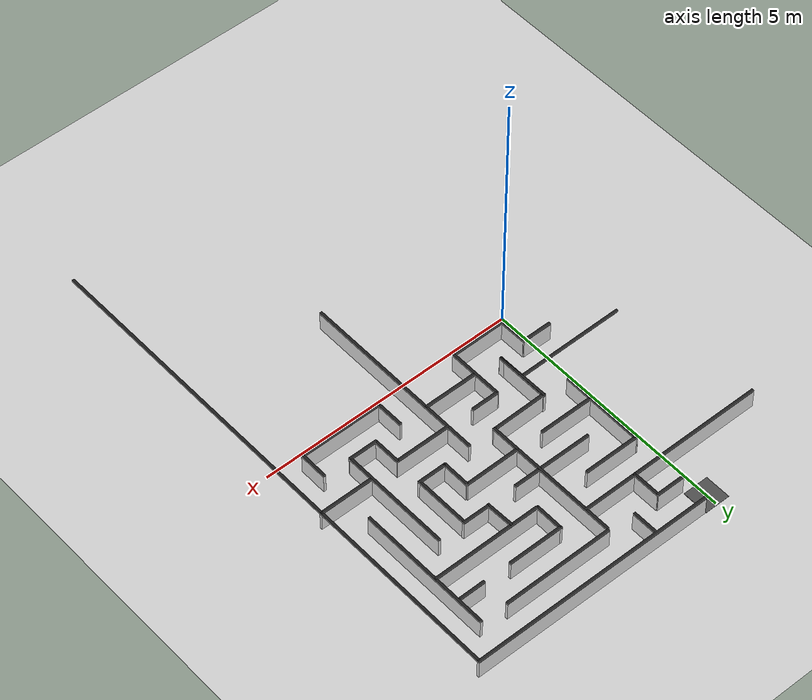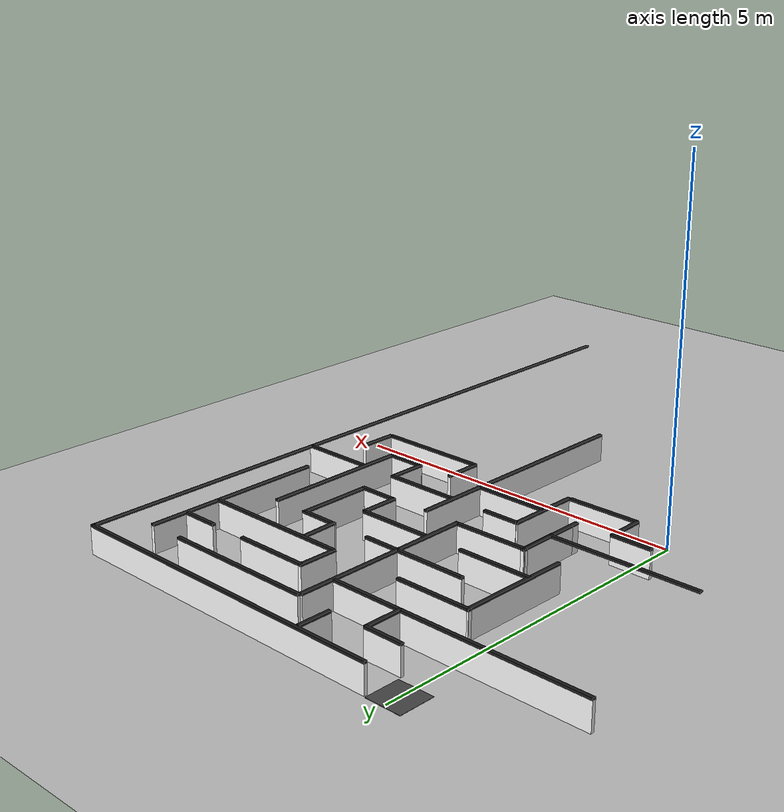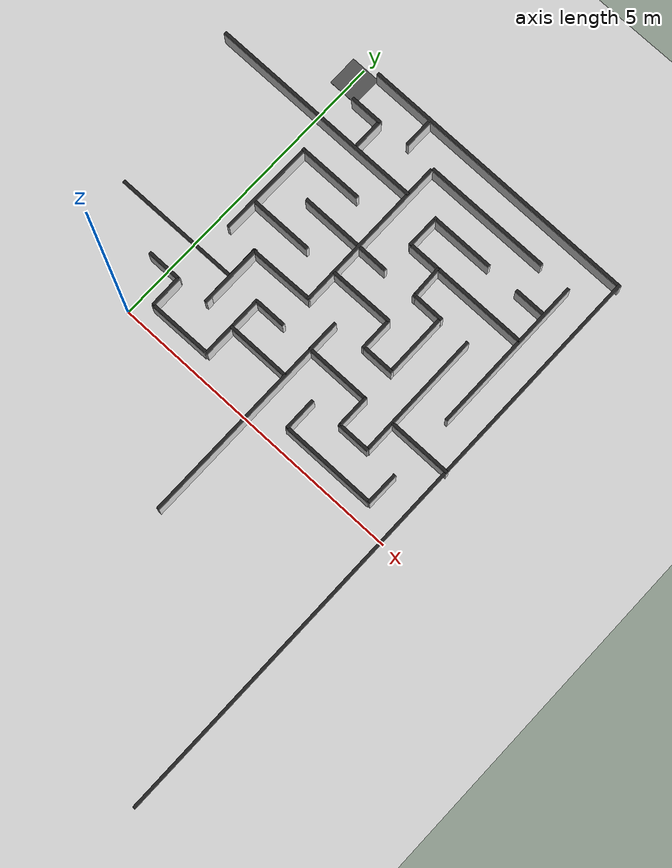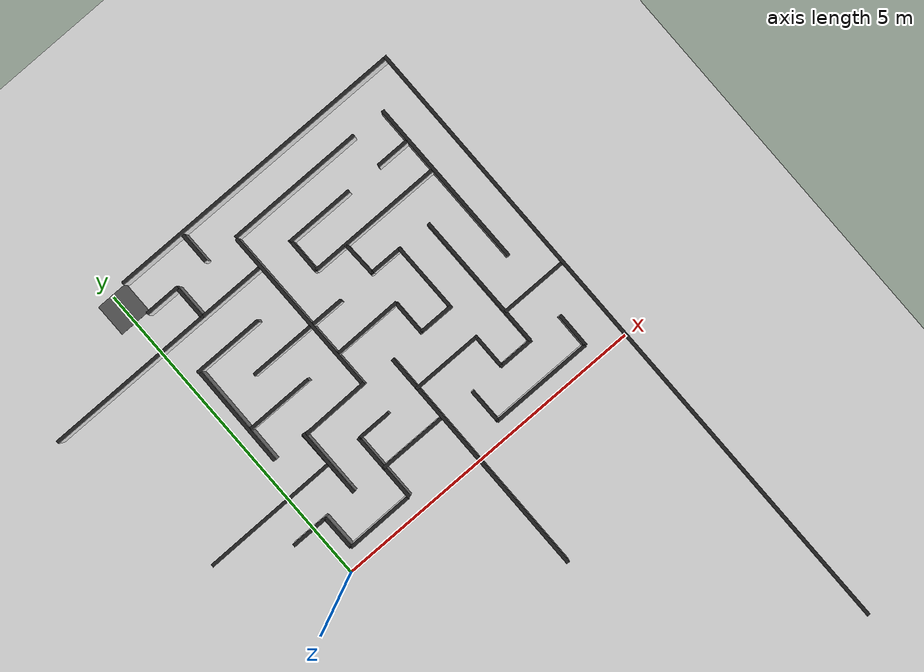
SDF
<sdf version="1.6">
 <world name="default">
  <model name="ground_plane">
   <static>1</static>
   <link name="link">
    <collision name="collision">
     <geometry><plane><normal>0 0 1</normal><size>100 100</size></plane></geometry>
     <surface><friction><ode><mu>100</mu><mu2>50</mu2></ode></friction></surface>
    </collision>
    <visual name="visual">
     <cast_shadows>0</cast_shadows>
     <geometry><plane><normal>0 0 1</normal><size>100 100</size></plane></geometry>
     <material>
      <script><uri>file://media/materials/scripts/gazebo.material</uri><name>Gazebo/Grey</name></script>
     </material>
    </visual>
   </link>
  </model>
  <model name="asphalt_green_plane">
   <static>1</static>
   <link name="link">
    <collision name="collision"><geometry><box><size>0.5 0.5 0.005</size></box></geometry></collision>
    <visual name="visual">
     <cast_shadows>0</cast_shadows>
     <geometry><box><size>0.5 0.5 0.005</size></box></geometry>
     <material>
      <script>
       <uri>model://asphalt_green_plane/materials/scripts</uri>
       <uri>model://asphalt_green_plane/materials/textures</uri>
       <name>vrc/asphalt_green</name>
      </script>
     </material>
    </visual>
   </link>
   <pose>0.003576 4.78964 0 0 -0 0</pose>
  </model>
  <model name="ibomaze">
   <link name="Wall_168">
    <collision name="Wall_168_Collision">
     <geometry><box><size>0.473 0.05 0.37</size></box></geometry>
     <pose>0 0 0.185 0 -0 0</pose>
    </collision>
    <visual name="Wall_168_Visual">
     <pose>0 0 0.185 0 -0 0</pose>
     <geometry><box><size>0.473 0.05 0.37</size></box></geometry>
     <material>
      <script><uri>file://media/materials/scripts/gazebo.material</uri><name>Gazebo/White</name></script>
      <ambient>1 1 1 1</ambient>
     </material>
    </visual>
    <pose>1.31958 4.73595 0 0 -0 1.5708</pose>
   </link>
   <link name="Wall_172">
    <collision name="Wall_172_Collision">
     <geometry><box><size>2.60602 0.05 0.37</size></box></geometry>
     <pose>0 0 0.185 0 -0 0</pose>
    </collision>
    <visual name="Wall_172_Visual">
     <pose>0 0 0.185 0 -0 0</pose>
     <geometry><box><size>2.60602 0.05 0.37</size></box></geometry>
     <material>
      <script><uri>file://media/materials/scripts/gazebo.material</uri><name>Gazebo/White</name></script>
      <ambient>1 1 1 1</ambient>
     </material>
    </visual>
    <pose>4.47494 3.17542 0 0 0 -1.56727</pose>
   </link>
   <link name="Wall_174">
    <collision name="Wall_174_Collision">
     <geometry><box><size>0.521111 0.05 0.37</size></box></geometry>
     <pose>0 0 0.185 0 -0 0</pose>
    </collision>
    <visual name="Wall_174_Visual">
     <pose>0 0 0.185 0 -0 0</pose>
     <geometry><box><size>0.521111 0.05 0.37</size></box></geometry>
     <material>
      <script><uri>file://media/materials/scripts/gazebo.material</uri><name>Gazebo/White</name></script>
      <ambient>1 1 1 1</ambient>
     </material>
    </visual>
    <pose>4.19708 3.95054 0 0 -0 0</pose>
   </link>
   <link name="Wall_176">
    <collision name="Wall_176_Collision">
     <geometry><box><size>1.053 0.05 0.37</size></box></geometry>
     <pose>0 0 0.185 0 -0 0</pose>
    </collision>
    <visual name="Wall_176_Visual">
     <pose>0 0 0.185 0 -0 0</pose>
     <geometry><box><size>1.053 0.05 0.37</size></box></geometry>
     <material>
      <script><uri>file://media/materials/scripts/gazebo.material</uri><name>Gazebo/White</name></script>
      <ambient>1 1 1 1</ambient>
     </material>
    </visual>
    <pose>2.89012 3.95254 0 0 -0 3.14159</pose>
   </link>
   <link name="Wall_178">
    <collision name="Wall_178_Collision">
     <geometry><box><size>0.563928 0.05 0.37</size></box></geometry>
     <pose>0 0 0.185 0 -0 0</pose>
    </collision>
    <visual name="Wall_178_Visual">
     <pose>0 0 0.185 0 -0 0</pose>
     <geometry><box><size>0.563928 0.05 0.37</size></box></geometry>
     <material>
      <script><uri>file://media/materials/scripts/gazebo.material</uri><name>Gazebo/White</name></script>
      <ambient>1 1 1 1</ambient>
     </material>
    </visual>
    <pose>2.37095 3.69582 0 0 -0 1.56698</pose>
   </link>
   <link name="Wall_180">
    <collision name="Wall_180_Collision">
     <geometry><box><size>2.105 0.05 0.37</size></box></geometry>
     <pose>0 0 0.185 0 -0 0</pose>
    </collision>
    <visual name="Wall_180_Visual">
     <pose>0 0 0.185 0 -0 0</pose>
     <geometry><box><size>2.105 0.05 0.37</size></box></geometry>
     <material>
      <script><uri>file://media/materials/scripts/gazebo.material</uri><name>Gazebo/White</name></script>
      <ambient>1 1 1 1</ambient>
     </material>
    </visual>
    <pose>3.42395 3.42878 0 0 -0 3.14159</pose>
   </link>
   <link name="Wall_725">
    <collision name="Wall_725_Collision">
     <geometry><box><size>1.04992 0.05 0.37</size></box></geometry>
     <pose>0 0 0.185 0 -0 0</pose>
    </collision>
    <visual name="Wall_725_Visual">
     <pose>0 0 0.185 0 -0 0</pose>
     <geometry><box><size>1.04992 0.05 0.37</size></box></geometry>
     <material>
      <script><uri>file://media/materials/scripts/gazebo.material</uri><name>Gazebo/White</name></script>
      <ambient>1 1 1 1</ambient>
     </material>
    </visual>
    <pose>4.47058 1.32554 0 0 -0 3.14159</pose>
   </link>
   <link name="Wall_727">
    <collision name="Wall_727_Collision">
     <geometry><box><size>2.10702 0.05 0.37</size></box></geometry>
     <pose>0 0 0.185 0 -0 0</pose>
    </collision>
    <visual name="Wall_727_Visual">
     <pose>0 0 0.185 0 -0 0</pose>
     <geometry><box><size>2.10702 0.05 0.37</size></box></geometry>
     <material>
      <script><uri>file://media/materials/scripts/gazebo.material</uri><name>Gazebo/White</name></script>
      <ambient>1 1 1 1</ambient>
     </material>
    </visual>
    <pose>3.94402 1.86304 0 0 0 -1.56691</pose>
   </link>
   <link name="Wall_729">
    <collision name="Wall_729_Collision">
     <geometry><box><size>0.556 0.05 0.37</size></box></geometry>
     <pose>0 0 0.185 0 -0 0</pose>
    </collision>
    <visual name="Wall_729_Visual">
     <pose>0 0 0.185 0 -0 0</pose>
     <geometry><box><size>0.556 0.05 0.37</size></box></geometry>
     <material>
      <script><uri>file://media/materials/scripts/gazebo.material</uri><name>Gazebo/White</name></script>
      <ambient>1 1 1 1</ambient>
     </material>
    </visual>
    <pose>3.68714 0.804662 0 0 -0 0</pose>
   </link>
   <link name="Wall_731">
    <collision name="Wall_731_Collision">
     <geometry><box><size>0.539 0.05 0.37</size></box></geometry>
     <pose>0 0 0.185 0 -0 0</pose>
    </collision>
    <visual name="Wall_731_Visual">
     <pose>0 0 0.185 0 -0 0</pose>
     <geometry><box><size>0.539 0.05 0.37</size></box></geometry>
     <material>
      <script><uri>file://media/materials/scripts/gazebo.material</uri><name>Gazebo/White</name></script>
      <ambient>1 1 1 1</ambient>
     </material>
    </visual>
    <pose>3.42434 1.07152 0 0 0 -1.5708</pose>
   </link>
   <link name="Wall_733">
    <collision name="Wall_733_Collision">
     <geometry><box><size>1.09912 0.05 0.37</size></box></geometry>
     <pose>0 0 0.185 0 -0 0</pose>
    </collision>
    <visual name="Wall_733_Visual">
     <pose>0 0 0.185 0 -0 0</pose>
     <geometry><box><size>1.09912 0.05 0.37</size></box></geometry>
     <material>
      <script><uri>file://media/materials/scripts/gazebo.material</uri><name>Gazebo/White</name></script>
      <ambient>1 1 1 1</ambient>
     </material>
    </visual>
    <pose>2.89608 1.32354 0 0 -0 0</pose>
   </link>
   <link name="Wall_735">
    <collision name="Wall_735_Collision">
     <geometry><box><size>3.65 0.05 0.37</size></box></geometry>
     <pose>0 0 0.185 0 -0 0</pose>
    </collision>
    <visual name="Wall_735_Visual">
     <pose>0 0 0.185 0 -0 0</pose>
     <geometry><box><size>3.65 0.05 0.37</size></box></geometry>
     <material>
      <script><uri>file://media/materials/scripts/gazebo.material</uri><name>Gazebo/White</name></script>
      <ambient>1 1 1 1</ambient>
     </material>
    </visual>
    <pose>2.36837 0.017848 0 0 0 -1.5708</pose>
   </link>
   <link name="Wall_762">
    <collision name="Wall_762_Collision">
     <geometry><box><size>1.058 0.05 0.37</size></box></geometry>
     <pose>0 0 0.185 0 -0 0</pose>
    </collision>
    <visual name="Wall_762_Visual">
     <pose>0 0 0.185 0 -0 0</pose>
     <geometry><box><size>1.058 0.05 0.37</size></box></geometry>
     <material>
      <script><uri>file://media/materials/scripts/gazebo.material</uri><name>Gazebo/White</name></script>
      <ambient>1 1 1 1</ambient>
     </material>
    </visual>
    <pose>1.84138 0.801298 0 0 -0 0</pose>
   </link>
   <link name="Wall_764">
    <collision name="Wall_764_Collision">
     <geometry><box><size>1.062 0.05 0.37</size></box></geometry>
     <pose>0 0 0.185 0 -0 0</pose>
    </collision>
    <visual name="Wall_764_Visual">
     <pose>0 0 0.185 0 -0 0</pose>
     <geometry><box><size>1.062 0.05 0.37</size></box></geometry>
     <material>
      <script><uri>file://media/materials/scripts/gazebo.material</uri><name>Gazebo/White</name></script>
      <ambient>1 1 1 1</ambient>
     </material>
    </visual>
    <pose>1.3219 0.806484 0 0 0 -1.5708</pose>
   </link>
   <link name="Wall_766">
    <collision name="Wall_766_Collision">
     <geometry><box><size>0.526 0.05 0.37</size></box></geometry>
     <pose>0 0 0.185 0 -0 0</pose>
    </collision>
    <visual name="Wall_766_Visual">
     <pose>0 0 0.185 0 -0 0</pose>
     <geometry><box><size>0.526 0.05 0.37</size></box></geometry>
     <material>
      <script><uri>file://media/materials/scripts/gazebo.material</uri><name>Gazebo/White</name></script>
      <ambient>1 1 1 1</ambient>
     </material>
    </visual>
    <pose>1.58536 1.32154 0 0 -0 3.14159</pose>
   </link>
   <link name="Wall_768">
    <collision name="Wall_768_Collision">
     <geometry><box><size>1.02603 0.05 0.37</size></box></geometry>
     <pose>0 0 0.185 0 -0 0</pose>
    </collision>
    <visual name="Wall_768_Visual">
     <pose>0 0 0.185 0 -0 0</pose>
     <geometry><box><size>1.02603 0.05 0.37</size></box></geometry>
     <material>
      <script><uri>file://media/materials/scripts/gazebo.material</uri><name>Gazebo/White</name></script>
      <ambient>1 1 1 1</ambient>
     </material>
    </visual>
    <pose>0.787014 0.280539 0 0 -0 0.008197</pose>
   </link>
   <link name="Wall_770">
    <collision name="Wall_770_Collision">
     <geometry><box><size>0.531026 0.05 0.37</size></box></geometry>
     <pose>0 0 0.185 0 -0 0</pose>
    </collision>
    <visual name="Wall_770_Visual">
     <pose>0 0 0.185 0 -0 0</pose>
     <geometry><box><size>0.531026 0.05 0.37</size></box></geometry>
     <material>
      <script><uri>file://media/materials/scripts/gazebo.material</uri><name>Gazebo/White</name></script>
      <ambient>1 1 1 1</ambient>
     </material>
    </visual>
    <pose>0.27356 0.53952 0 0 0 -1.5604</pose>
   </link>
   <link name="Wall_772">
    <collision name="Wall_772_Collision">
     <geometry><box><size>0.584072 0.05 0.37</size></box></geometry>
     <pose>0 0 0.185 0 -0 0</pose>
    </collision>
    <visual name="Wall_772_Visual">
     <pose>0 0 0.185 0 -0 0</pose>
     <geometry><box><size>0.584072 0.05 0.37</size></box></geometry>
     <material>
      <script><uri>file://media/materials/scripts/gazebo.material</uri><name>Gazebo/White</name></script>
      <ambient>1 1 1 1</ambient>
     </material>
    </visual>
    <pose>-0.005421 0.801539 0 0 -0 0</pose>
   </link>
   <link name="Wall_774">
    <collision name="Wall_774_Collision">
     <geometry><box><size>1.05608 0.05 0.37</size></box></geometry>
     <pose>0 0 0.185 0 -0 0</pose>
    </collision>
    <visual name="Wall_774_Visual">
     <pose>0 0 0.185 0 -0 0</pose>
     <geometry><box><size>1.05608 0.05 0.37</size></box></geometry>
     <material>
      <script><uri>file://media/materials/scripts/gazebo.material</uri><name>Gazebo/White</name></script>
      <ambient>1 1 1 1</ambient>
     </material>
    </visual>
    <pose>0.793579 1.34254 0 0 0 -1.5708</pose>
   </link>
   <link name="Wall_776">
    <collision name="Wall_776_Collision">
     <geometry><box><size>1.10916 0.05 0.37</size></box></geometry>
     <pose>0 0 0.185 0 -0 0</pose>
    </collision>
    <visual name="Wall_776_Visual">
     <pose>0 0 0.185 0 -0 0</pose>
     <geometry><box><size>1.10916 0.05 0.37</size></box></geometry>
     <material>
      <script><uri>file://media/materials/scripts/gazebo.material</uri><name>Gazebo/White</name></script>
      <ambient>1 1 1 1</ambient>
     </material>
    </visual>
    <pose>1.31341 1.84073 0 0 0 -3.12685</pose>
   </link>
   <link name="Wall_778">
    <collision name="Wall_778_Collision">
     <geometry><box><size>2.63464 0.05 0.37</size></box></geometry>
     <pose>0 0 0.185 0 -0 0</pose>
    </collision>
    <visual name="Wall_778_Visual">
     <pose>0 0 0.185 0 -0 0</pose>
     <geometry><box><size>2.63464 0.05 0.37</size></box></geometry>
     <material>
      <script><uri>file://media/materials/scripts/gazebo.material</uri><name>Gazebo/White</name></script>
      <ambient>1 1 1 1</ambient>
     </material>
    </visual>
    <pose>1.83843 3.14104 0 0 -0 1.57428</pose>
   </link>
   <link name="Wall_780">
    <collision name="Wall_780_Collision">
     <geometry><box><size>2.12337 0.05 0.37</size></box></geometry>
     <pose>0 0 0.185 0 -0 0</pose>
    </collision>
    <visual name="Wall_780_Visual">
     <pose>0 0 0.185 0 -0 0</pose>
     <geometry><box><size>2.12337 0.05 0.37</size></box></geometry>
     <material>
      <script><uri>file://media/materials/scripts/gazebo.material</uri><name>Gazebo/White</name></script>
      <ambient>1 1 1 1</ambient>
     </material>
    </visual>
    <pose>2.89708 4.47854 0 0 -0 3.14159</pose>
   </link>
   <link name="Wall_782">
    <collision name="Wall_782_Collision">
     <geometry><box><size>1.55401 0.05 0.37</size></box></geometry>
     <pose>0 0 0.185 0 -0 0</pose>
    </collision>
    <visual name="Wall_782_Visual">
     <pose>0 0 0.185 0 -0 0</pose>
     <geometry><box><size>1.55401 0.05 0.37</size></box></geometry>
     <material>
      <script><uri>file://media/materials/scripts/gazebo.material</uri><name>Gazebo/White</name></script>
      <ambient>1 1 1 1</ambient>
     </material>
    </visual>
    <pose>1.58686 2.9038 0 0 0 -0.003324</pose>
   </link>
   <link name="Wall_784">
    <collision name="Wall_784_Collision">
     <geometry><box><size>1.08632 0.05 0.37</size></box></geometry>
     <pose>0 0 0.185 0 -0 0</pose>
    </collision>
    <visual name="Wall_784_Visual">
     <pose>0 0 0.185 0 -0 0</pose>
     <geometry><box><size>1.08632 0.05 0.37</size></box></geometry>
     <material>
      <script><uri>file://media/materials/scripts/gazebo.material</uri><name>Gazebo/White</name></script>
      <ambient>1 1 1 1</ambient>
     </material>
    </visual>
    <pose>0.790122 3.42855 0 0 -0 3.14099</pose>
   </link>
   <link name="Wall_786">
    <collision name="Wall_786_Collision">
     <geometry><box><size>1.61005 0.05 0.37</size></box></geometry>
     <pose>0 0 0.185 0 -0 0</pose>
    </collision>
    <visual name="Wall_786_Visual">
     <pose>0 0 0.185 0 -0 0</pose>
     <geometry><box><size>1.61005 0.05 0.37</size></box></geometry>
     <material>
      <script><uri>file://media/materials/scripts/gazebo.material</uri><name>Gazebo/White</name></script>
      <ambient>1 1 1 1</ambient>
     </material>
    </visual>
    <pose>0.270286 2.64886 0 0 0 -1.57849</pose>
   </link>
   <link name="Wall_820">
    <collision name="Wall_820_Collision">
     <geometry><box><size>1.04303 0.05 0.37</size></box></geometry>
     <pose>0 0 0.185 0 -0 0</pose>
    </collision>
    <visual name="Wall_820_Visual">
     <pose>0 0 0.185 0 -0 0</pose>
     <geometry><box><size>1.04303 0.05 0.37</size></box></geometry>
     <material>
      <script><uri>file://media/materials/scripts/gazebo.material</uri><name>Gazebo/White</name></script>
      <ambient>1 1 1 1</ambient>
     </material>
    </visual>
    <pose>0.790658 1.33969 0 0 0 -1.56375</pose>
   </link>
   <link name="Wall_822">
    <collision name="Wall_822_Collision">
     <geometry><box><size>1.05465 0.05 0.37</size></box></geometry>
     <pose>0 0 0.185 0 -0 0</pose>
    </collision>
    <visual name="Wall_822_Visual">
     <pose>0 0 0.185 0 -0 0</pose>
     <geometry><box><size>1.05465 0.05 0.37</size></box></geometry>
     <material>
      <script><uri>file://media/materials/scripts/gazebo.material</uri><name>Gazebo/White</name></script>
      <ambient>1 1 1 1</ambient>
     </material>
    </visual>
    <pose>0.797079 2.37954 0 0 -0 3.14159</pose>
   </link>
   <link name="Wall_834">
    <collision name="Wall_834_Collision">
     <geometry><box><size>3.659 0.05 0.37</size></box></geometry>
     <pose>0 0 0.185 0 -0 0</pose>
    </collision>
    <visual name="Wall_834_Visual">
     <pose>0 0 0.185 0 -0 0</pose>
     <geometry><box><size>3.659 0.05 0.37</size></box></geometry>
     <material>
      <script><uri>file://media/materials/scripts/gazebo.material</uri><name>Gazebo/White</name></script>
      <ambient>1 1 1 1</ambient>
     </material>
    </visual>
    <pose>0.024914 3.95678 0 0 -0 0</pose>
   </link>
   <link name="Wall_836">
    <collision name="Wall_836_Collision">
     <geometry><box><size>0.55 0.05 0.37</size></box></geometry>
     <pose>0 0 0.185 0 -0 0</pose>
    </collision>
    <visual name="Wall_836_Visual">
     <pose>0 0 0.185 0 -0 0</pose>
     <geometry><box><size>0.55 0.05 0.37</size></box></geometry>
     <material>
      <script><uri>file://media/materials/scripts/gazebo.material</uri><name>Gazebo/White</name></script>
      <ambient>1 1 1 1</ambient>
     </material>
    </visual>
    <pose>0.529774 4.48178 0 0 -0 0</pose>
   </link>
   <link name="Wall_840">
    <collision name="Wall_840_Collision">
     <geometry><box><size>0.545395 0.05 0.37</size></box></geometry>
     <pose>0 0 0.185 0 -0 0</pose>
    </collision>
    <visual name="Wall_840_Visual">
     <pose>0 0 0.185 0 -0 0</pose>
     <geometry><box><size>0.545395 0.05 0.37</size></box></geometry>
     <material>
      <script><uri>file://media/materials/scripts/gazebo.material</uri><name>Gazebo/White</name></script>
      <ambient>1 1 1 1</ambient>
     </material>
    </visual>
    <pose>0.790949 4.21861 0 0 -0 1.57461</pose>
   </link>
   <link name="Wall_842">
    <collision name="Wall_842_Collision">
     <geometry><box><size>0.473 0.05 0.37</size></box></geometry>
     <pose>0 0 0.185 0 -0 0</pose>
    </collision>
    <visual name="Wall_842_Visual">
     <pose>0 0 0.185 0 -0 0</pose>
     <geometry><box><size>0.473 0.05 0.37</size></box></geometry>
     <material>
      <script><uri>file://media/materials/scripts/gazebo.material</uri><name>Gazebo/White</name></script>
      <ambient>1 1 1 1</ambient>
     </material>
    </visual>
    <pose>1.31958 4.73595 0 0 -0 1.5708</pose>
   </link>
   <link name="Wall_845">
    <collision name="Wall_845_Collision">
     <geometry><box><size>0.553682 0.05 0.37</size></box></geometry>
     <pose>0 0 0.185 0 -0 0</pose>
    </collision>
    <visual name="Wall_845_Visual">
     <pose>0 0 0.185 0 -0 0</pose>
     <geometry><box><size>0.553682 0.05 0.37</size></box></geometry>
     <material>
      <script><uri>file://media/materials/scripts/gazebo.material</uri><name>Gazebo/White</name></script>
      <ambient>1 1 1 1</ambient>
     </material>
    </visual>
    <pose>2.91321 3.15977 0 0 0 -1.5365</pose>
   </link>
   <link name="Wall_847">
    <collision name="Wall_847_Collision">
     <geometry><box><size>0.553474 0.05 0.37</size></box></geometry>
     <pose>0 0 0.185 0 -0 0</pose>
    </collision>
    <visual name="Wall_847_Visual">
     <pose>0 0 0.185 0 -0 0</pose>
     <geometry><box><size>0.553474 0.05 0.37</size></box></geometry>
     <material>
      <script><uri>file://media/materials/scripts/gazebo.material</uri><name>Gazebo/White</name></script>
      <ambient>1 1 1 1</ambient>
     </material>
    </visual>
    <pose>3.17358 2.90958 0 0 -0 3.13456</pose>
   </link>
   <link name="Wall_849">
    <collision name="Wall_849_Collision">
     <geometry><box><size>1.03501 0.05 0.37</size></box></geometry>
     <pose>0 0 0.185 0 -0 0</pose>
    </collision>
    <visual name="Wall_849_Visual">
     <pose>0 0 0.185 0 -0 0</pose>
     <geometry><box><size>1.03501 0.05 0.37</size></box></geometry>
     <material>
      <script><uri>file://media/materials/scripts/gazebo.material</uri><name>Gazebo/White</name></script>
      <ambient>1 1 1 1</ambient>
     </material>
    </visual>
    <pose>3.42439 2.40673 0 0 -0 1.57486</pose>
   </link>
   <link name="Wall_851">
    <collision name="Wall_851_Collision">
     <geometry><box><size>0.542 0.05 0.37</size></box></geometry>
     <pose>0 0 0.185 0 -0 0</pose>
    </collision>
    <visual name="Wall_851_Visual">
     <pose>0 0 0.185 0 -0 0</pose>
     <geometry><box><size>0.542 0.05 0.37</size></box></geometry>
     <material>
      <script><uri>file://media/materials/scripts/gazebo.material</uri><name>Gazebo/White</name></script>
      <ambient>1 1 1 1</ambient>
     </material>
    </visual>
    <pose>3.17993 1.86406 0 0 -0 0</pose>
   </link>
   <link name="Wall_853">
    <collision name="Wall_853_Collision">
     <geometry><box><size>0.547 0.05 0.37</size></box></geometry>
     <pose>0 0 0.185 0 -0 0</pose>
    </collision>
    <visual name="Wall_853_Visual">
     <pose>0 0 0.185 0 -0 0</pose>
     <geometry><box><size>0.547 0.05 0.37</size></box></geometry>
     <material>
      <script><uri>file://media/materials/scripts/gazebo.material</uri><name>Gazebo/White</name></script>
      <ambient>1 1 1 1</ambient>
     </material>
    </visual>
    <pose>2.90285 2.11396 0 0 0 -1.5708</pose>
   </link>
   <link name="Wall_855">
    <collision name="Wall_855_Collision">
     <geometry><box><size>1.08302 0.05 0.37</size></box></geometry>
     <pose>0 0 0.185 0 -0 0</pose>
    </collision>
    <visual name="Wall_855_Visual">
     <pose>0 0 0.185 0 -0 0</pose>
     <geometry><box><size>1.08302 0.05 0.37</size></box></geometry>
     <material>
      <script><uri>file://media/materials/scripts/gazebo.material</uri><name>Gazebo/White</name></script>
      <ambient>1 1 1 1</ambient>
     </material>
    </visual>
    <pose>2.36938 2.38254 0 0 -0 0.005808</pose>
   </link>
   <link name="Wall_880">
    <collision name="Wall_880_Collision">
     <geometry><box><size>1.578 0.05 0.37</size></box></geometry>
     <pose>0 0 0.185 0 -0 0</pose>
    </collision>
    <visual name="Wall_880_Visual">
     <pose>0 0 0.185 0 -0 0</pose>
     <geometry><box><size>1.578 0.05 0.37</size></box></geometry>
     <material>
      <script><uri>file://media/materials/scripts/gazebo.material</uri><name>Gazebo/White</name></script>
      <ambient>1 1 1 1</ambient>
     </material>
    </visual>
    <pose>3.68078 0.274091 0 0 -0 0.001309</pose>
   </link>
   <link name="Wall_882">
    <collision name="Wall_882_Collision">
     <geometry><box><size>0.539009 0.05 0.37</size></box></geometry>
     <pose>0 0 0.185 0 -0 0</pose>
    </collision>
    <visual name="Wall_882_Visual">
     <pose>0 0 0.185 0 -0 0</pose>
     <geometry><box><size>0.539009 0.05 0.37</size></box></geometry>
     <material>
      <script><uri>file://media/materials/scripts/gazebo.material</uri><name>Gazebo/White</name></script>
      <ambient>1 1 1 1</ambient>
     </material>
    </visual>
    <pose>4.47608 0.533736 0 0 0 -1.57693</pose>
   </link>
   <link name="Wall_884">
    <collision name="Wall_884_Collision">
     <geometry><box><size>0.539004 0.05 0.37</size></box></geometry>
     <pose>0 0 0.185 0 -0 0</pose>
    </collision>
    <visual name="Wall_884_Visual">
     <pose>0 0 0.185 0 -0 0</pose>
     <geometry><box><size>0.539004 0.05 0.37</size></box></geometry>
     <material>
      <script><uri>file://media/materials/scripts/gazebo.material</uri><name>Gazebo/White</name></script>
      <ambient>1 1 1 1</ambient>
     </material>
    </visual>
    <pose>2.904 0.53432 0 0 0 -1.56671</pose>
   </link>
   <link name="Wall_9">
    <collision name="Wall_9_Collision">
     <geometry><box><size>4.72702 0.05 0.37</size></box></geometry>
     <pose>0 0 0.185 0 -0 0</pose>
    </collision>
    <visual name="Wall_9_Visual">
     <pose>0 0 0.185 0 -0 0</pose>
     <geometry><box><size>4.72702 0.05 0.37</size></box></geometry>
     <material>
      <script><uri>file://media/materials/scripts/gazebo.material</uri><name>Gazebo/White</name></script>
      <ambient>1 1 1 1</ambient>
     </material>
    </visual>
    <pose>2.63436 5.00063 0 0 -0 3.13838</pose>
   </link>
   <static>1</static>
  </model>
  <model name="ibomaze_5">
   <pose>0 0 0.37 0 -0 0</pose>
   <link name="Wall_168">
    <collision name="Wall_168_Collision">
     <geometry><box><size>0.473 0.05 0.03</size></box></geometry>
     <pose>0 0 0.015 0 -0 0</pose>
    </collision>
    <visual name="Wall_168_Visual">
     <pose>0 0 0.015 0 -0 0</pose>
     <geometry><box><size>0.473 0.05 0.03</size></box></geometry>
     <material>
      <script><uri>file://media/materials/scripts/gazebo.material</uri><name>Gazebo/Black</name></script>
      <ambient>0 0 0 1</ambient>
     </material>
    </visual>
    <pose>1.31958 4.73595 0 0 -0 1.5708</pose>
   </link>
   <link name="Wall_172">
    <collision name="Wall_172_Collision">
     <geometry><box><size>2.60602 0.05 0.03</size></box></geometry>
     <pose>0 0 0.015 0 -0 0</pose>
    </collision>
    <visual name="Wall_172_Visual">
     <pose>0 0 0.015 0 -0 0</pose>
     <geometry><box><size>2.60602 0.05 0.03</size></box></geometry>
     <material>
      <script><uri>file://media/materials/scripts/gazebo.material</uri><name>Gazebo/Black</name></script>
      <ambient>0 0 0 1</ambient>
     </material>
    </visual>
    <pose>4.47494 3.17542 0 0 0 -1.56727</pose>
   </link>
   <link name="Wall_174">
    <collision name="Wall_174_Collision">
     <geometry><box><size>0.521111 0.05 0.03</size></box></geometry>
     <pose>0 0 0.015 0 -0 0</pose>
    </collision>
    <visual name="Wall_174_Visual">
     <pose>0 0 0.015 0 -0 0</pose>
     <geometry><box><size>0.521111 0.05 0.03</size></box></geometry>
     <material>
      <script><uri>file://media/materials/scripts/gazebo.material</uri><name>Gazebo/Black</name></script>
      <ambient>0 0 0 1</ambient>
     </material>
    </visual>
    <pose>4.19708 3.95054 0 0 -0 0</pose>
   </link>
   <link name="Wall_176">
    <collision name="Wall_176_Collision">
     <geometry><box><size>1.053 0.05 0.03</size></box></geometry>
     <pose>0 0 0.015 0 -0 0</pose>
    </collision>
    <visual name="Wall_176_Visual">
     <pose>0 0 0.015 0 -0 0</pose>
     <geometry><box><size>1.053 0.05 0.03</size></box></geometry>
     <material>
      <script><uri>file://media/materials/scripts/gazebo.material</uri><name>Gazebo/Black</name></script>
      <ambient>0 0 0 1</ambient>
     </material>
    </visual>
    <pose>2.89012 3.95254 0 0 -0 3.14159</pose>
   </link>
   <link name="Wall_178">
    <collision name="Wall_178_Collision">
     <geometry><box><size>0.563928 0.05 0.03</size></box></geometry>
     <pose>0 0 0.015 0 -0 0</pose>
    </collision>
    <visual name="Wall_178_Visual">
     <pose>0 0 0.015 0 -0 0</pose>
     <geometry><box><size>0.563928 0.05 0.03</size></box></geometry>
     <material>
      <script><uri>file://media/materials/scripts/gazebo.material</uri><name>Gazebo/Black</name></script>
      <ambient>0 0 0 1</ambient>
     </material>
    </visual>
    <pose>2.37095 3.69582 0 0 -0 1.56698</pose>
   </link>
   <link name="Wall_180">
    <collision name="Wall_180_Collision">
     <geometry><box><size>2.105 0.05 0.03</size></box></geometry>
     <pose>0 0 0.015 0 -0 0</pose>
    </collision>
    <visual name="Wall_180_Visual">
     <pose>0 0 0.015 0 -0 0</pose>
     <geometry><box><size>2.105 0.05 0.03</size></box></geometry>
     <material>
      <script><uri>file://media/materials/scripts/gazebo.material</uri><name>Gazebo/Black</name></script>
      <ambient>0 0 0 1</ambient>
     </material>
    </visual>
    <pose>3.42395 3.42878 0 0 -0 3.14159</pose>
   </link>
   <link name="Wall_7">
    <collision name="Wall_7_Collision">
     <geometry><box><size>10.0256 0.05 0.03</size></box></geometry>
     <pose>0 0 0.015 0 -0 0</pose>
    </collision>
    <visual name="Wall_7_Visual">
     <pose>0 0 0.015 0 -0 0</pose>
     <geometry><box><size>10.0256 0.05 0.03</size></box></geometry>
     <material>
      <script><uri>file://media/materials/scripts/gazebo.material</uri><name>Gazebo/Black</name></script>
      <ambient>0 0 0 1</ambient>
     </material>
    </visual>
    <pose>4.98072 0.005333 0 0 -0 1.57237</pose>
   </link>
   <link name="Wall_725">
    <collision name="Wall_725_Collision">
     <geometry><box><size>1.04992 0.05 0.03</size></box></geometry>
     <pose>0 0 0.015 0 -0 0</pose>
    </collision>
    <visual name="Wall_725_Visual">
     <pose>0 0 0.015 0 -0 0</pose>
     <geometry><box><size>1.04992 0.05 0.03</size></box></geometry>
     <material>
      <script><uri>file://media/materials/scripts/gazebo.material</uri><name>Gazebo/Black</name></script>
      <ambient>0 0 0 1</ambient>
     </material>
    </visual>
    <pose>4.47058 1.32554 0 0 -0 3.14159</pose>
   </link>
   <link name="Wall_727">
    <collision name="Wall_727_Collision">
     <geometry><box><size>2.10702 0.05 0.03</size></box></geometry>
     <pose>0 0 0.015 0 -0 0</pose>
    </collision>
    <visual name="Wall_727_Visual">
     <pose>0 0 0.015 0 -0 0</pose>
     <geometry><box><size>2.10702 0.05 0.03</size></box></geometry>
     <material>
      <script><uri>file://media/materials/scripts/gazebo.material</uri><name>Gazebo/Black</name></script>
      <ambient>0 0 0 1</ambient>
     </material>
    </visual>
    <pose>3.94402 1.86304 0 0 0 -1.56691</pose>
   </link>
   <link name="Wall_729">
    <collision name="Wall_729_Collision">
     <geometry><box><size>0.556 0.05 0.03</size></box></geometry>
     <pose>0 0 0.015 0 -0 0</pose>
    </collision>
    <visual name="Wall_729_Visual">
     <pose>0 0 0.015 0 -0 0</pose>
     <geometry><box><size>0.556 0.05 0.03</size></box></geometry>
     <material>
      <script><uri>file://media/materials/scripts/gazebo.material</uri><name>Gazebo/Black</name></script>
      <ambient>0 0 0 1</ambient>
     </material>
    </visual>
    <pose>3.68714 0.804662 0 0 -0 0</pose>
   </link>
   <link name="Wall_731">
    <collision name="Wall_731_Collision">
     <geometry><box><size>0.539 0.05 0.03</size></box></geometry>
     <pose>0 0 0.015 0 -0 0</pose>
    </collision>
    <visual name="Wall_731_Visual">
     <pose>0 0 0.015 0 -0 0</pose>
     <geometry><box><size>0.539 0.05 0.03</size></box></geometry>
     <material>
      <script><uri>file://media/materials/scripts/gazebo.material</uri><name>Gazebo/Black</name></script>
      <ambient>0 0 0 1</ambient>
     </material>
    </visual>
    <pose>3.42434 1.07152 0 0 0 -1.5708</pose>
   </link>
   <link name="Wall_733">
    <collision name="Wall_733_Collision">
     <geometry><box><size>1.09912 0.05 0.03</size></box></geometry>
     <pose>0 0 0.015 0 -0 0</pose>
    </collision>
    <visual name="Wall_733_Visual">
     <pose>0 0 0.015 0 -0 0</pose>
     <geometry><box><size>1.09912 0.05 0.03</size></box></geometry>
     <material>
      <script><uri>file://media/materials/scripts/gazebo.material</uri><name>Gazebo/Black</name></script>
      <ambient>0 0 0 1</ambient>
     </material>
    </visual>
    <pose>2.89608 1.32354 0 0 -0 0</pose>
   </link>
   <link name="Wall_735">
    <collision name="Wall_735_Collision">
     <geometry><box><size>3.65 0.05 0.03</size></box></geometry>
     <pose>0 0 0.015 0 -0 0</pose>
    </collision>
    <visual name="Wall_735_Visual">
     <pose>0 0 0.015 0 -0 0</pose>
     <geometry><box><size>3.65 0.05 0.03</size></box></geometry>
     <material>
      <script><uri>file://media/materials/scripts/gazebo.material</uri><name>Gazebo/Black</name></script>
      <ambient>0 0 0 1</ambient>
     </material>
    </visual>
    <pose>2.36837 0.017848 0 0 0 -1.5708</pose>
   </link>
   <link name="Wall_762">
    <collision name="Wall_762_Collision">
     <geometry><box><size>1.058 0.05 0.03</size></box></geometry>
     <pose>0 0 0.015 0 -0 0</pose>
    </collision>
    <visual name="Wall_762_Visual">
     <pose>0 0 0.015 0 -0 0</pose>
     <geometry><box><size>1.058 0.05 0.03</size></box></geometry>
     <material>
      <script><uri>file://media/materials/scripts/gazebo.material</uri><name>Gazebo/Black</name></script>
      <ambient>0 0 0 1</ambient>
     </material>
    </visual>
    <pose>1.84138 0.801298 0 0 -0 0</pose>
   </link>
   <link name="Wall_764">
    <collision name="Wall_764_Collision">
     <geometry><box><size>1.062 0.05 0.03</size></box></geometry>
     <pose>0 0 0.015 0 -0 0</pose>
    </collision>
    <visual name="Wall_764_Visual">
     <pose>0 0 0.015 0 -0 0</pose>
     <geometry><box><size>1.062 0.05 0.03</size></box></geometry>
     <material>
      <script><uri>file://media/materials/scripts/gazebo.material</uri><name>Gazebo/Black</name></script>
      <ambient>0 0 0 1</ambient>
     </material>
    </visual>
    <pose>1.3219 0.806484 0 0 0 -1.5708</pose>
   </link>
   <link name="Wall_766">
    <collision name="Wall_766_Collision">
     <geometry><box><size>0.526 0.05 0.03</size></box></geometry>
     <pose>0 0 0.015 0 -0 0</pose>
    </collision>
    <visual name="Wall_766_Visual">
     <pose>0 0 0.015 0 -0 0</pose>
     <geometry><box><size>0.526 0.05 0.03</size></box></geometry>
     <material>
      <script><uri>file://media/materials/scripts/gazebo.material</uri><name>Gazebo/Black</name></script>
      <ambient>0 0 0 1</ambient>
     </material>
    </visual>
    <pose>1.58536 1.32154 0 0 -0 3.14159</pose>
   </link>
   <link name="Wall_768">
    <collision name="Wall_768_Collision">
     <geometry><box><size>1.02603 0.05 0.03</size></box></geometry>
     <pose>0 0 0.015 0 -0 0</pose>
    </collision>
    <visual name="Wall_768_Visual">
     <pose>0 0 0.015 0 -0 0</pose>
     <geometry><box><size>1.02603 0.05 0.03</size></box></geometry>
     <material>
      <script><uri>file://media/materials/scripts/gazebo.material</uri><name>Gazebo/Black</name></script>
      <ambient>0 0 0 1</ambient>
     </material>
    </visual>
    <pose>0.787014 0.280539 0 0 -0 0.008197</pose>
   </link>
   <link name="Wall_770">
    <collision name="Wall_770_Collision">
     <geometry><box><size>0.531026 0.05 0.03</size></box></geometry>
     <pose>0 0 0.015 0 -0 0</pose>
    </collision>
    <visual name="Wall_770_Visual">
     <pose>0 0 0.015 0 -0 0</pose>
     <geometry><box><size>0.531026 0.05 0.03</size></box></geometry>
     <material>
      <script><uri>file://media/materials/scripts/gazebo.material</uri><name>Gazebo/Black</name></script>
      <ambient>0 0 0 1</ambient>
     </material>
    </visual>
    <pose>0.27356 0.53952 0 0 0 -1.5604</pose>
   </link>
   <link name="Wall_772">
    <collision name="Wall_772_Collision">
     <geometry><box><size>0.584072 0.05 0.03</size></box></geometry>
     <pose>0 0 0.015 0 -0 0</pose>
    </collision>
    <visual name="Wall_772_Visual">
     <pose>0 0 0.015 0 -0 0</pose>
     <geometry><box><size>0.584072 0.05 0.03</size></box></geometry>
     <material>
      <script><uri>file://media/materials/scripts/gazebo.material</uri><name>Gazebo/Black</name></script>
      <ambient>0 0 0 1</ambient>
     </material>
    </visual>
    <pose>-0.005421 0.801539 0 0 -0 0</pose>
   </link>
   <link name="Wall_774">
    <collision name="Wall_774_Collision">
     <geometry><box><size>1.05608 0.05 0.03</size></box></geometry>
     <pose>0 0 0.015 0 -0 0</pose>
    </collision>
    <visual name="Wall_774_Visual">
     <pose>0 0 0.015 0 -0 0</pose>
     <geometry><box><size>1.05608 0.05 0.03</size></box></geometry>
     <material>
      <script><uri>file://media/materials/scripts/gazebo.material</uri><name>Gazebo/Black</name></script>
      <ambient>0 0 0 1</ambient>
     </material>
    </visual>
    <pose>0.793579 1.34254 0 0 0 -1.5708</pose>
   </link>
   <link name="Wall_776">
    <collision name="Wall_776_Collision">
     <geometry><box><size>1.10916 0.05 0.03</size></box></geometry>
     <pose>0 0 0.015 0 -0 0</pose>
    </collision>
    <visual name="Wall_776_Visual">
     <pose>0 0 0.015 0 -0 0</pose>
     <geometry><box><size>1.10916 0.05 0.03</size></box></geometry>
     <material>
      <script><uri>file://media/materials/scripts/gazebo.material</uri><name>Gazebo/Black</name></script>
      <ambient>0 0 0 1</ambient>
     </material>
    </visual>
    <pose>1.31341 1.84073 0 0 0 -3.12685</pose>
   </link>
   <link name="Wall_778">
    <collision name="Wall_778_Collision">
     <geometry><box><size>2.63464 0.05 0.03</size></box></geometry>
     <pose>0 0 0.015 0 -0 0</pose>
    </collision>
    <visual name="Wall_778_Visual">
     <pose>0 0 0.015 0 -0 0</pose>
     <geometry><box><size>2.63464 0.05 0.03</size></box></geometry>
     <material>
      <script><uri>file://media/materials/scripts/gazebo.material</uri><name>Gazebo/Black</name></script>
      <ambient>0 0 0 1</ambient>
     </material>
    </visual>
    <pose>1.83843 3.14104 0 0 -0 1.57428</pose>
   </link>
   <link name="Wall_780">
    <collision name="Wall_780_Collision">
     <geometry><box><size>2.12337 0.05 0.03</size></box></geometry>
     <pose>0 0 0.015 0 -0 0</pose>
    </collision>
    <visual name="Wall_780_Visual">
     <pose>0 0 0.015 0 -0 0</pose>
     <geometry><box><size>2.12337 0.05 0.03</size></box></geometry>
     <material>
      <script><uri>file://media/materials/scripts/gazebo.material</uri><name>Gazebo/Black</name></script>
      <ambient>0 0 0 1</ambient>
     </material>
    </visual>
    <pose>2.89708 4.47854 0 0 -0 3.14159</pose>
   </link>
   <link name="Wall_782">
    <collision name="Wall_782_Collision">
     <geometry><box><size>1.55401 0.05 0.03</size></box></geometry>
     <pose>0 0 0.015 0 -0 0</pose>
    </collision>
    <visual name="Wall_782_Visual">
     <pose>0 0 0.015 0 -0 0</pose>
     <geometry><box><size>1.55401 0.05 0.03</size></box></geometry>
     <material>
      <script><uri>file://media/materials/scripts/gazebo.material</uri><name>Gazebo/Black</name></script>
      <ambient>0 0 0 1</ambient>
     </material>
    </visual>
    <pose>1.58686 2.9038 0 0 0 -0.003324</pose>
   </link>
   <link name="Wall_784">
    <collision name="Wall_784_Collision">
     <geometry><box><size>1.08632 0.05 0.03</size></box></geometry>
     <pose>0 0 0.015 0 -0 0</pose>
    </collision>
    <visual name="Wall_784_Visual">
     <pose>0 0 0.015 0 -0 0</pose>
     <geometry><box><size>1.08632 0.05 0.03</size></box></geometry>
     <material>
      <script><uri>file://media/materials/scripts/gazebo.material</uri><name>Gazebo/Black</name></script>
      <ambient>0 0 0 1</ambient>
     </material>
    </visual>
    <pose>0.790122 3.42855 0 0 -0 3.14099</pose>
   </link>
   <link name="Wall_786">
    <collision name="Wall_786_Collision">
     <geometry><box><size>1.61005 0.05 0.03</size></box></geometry>
     <pose>0 0 0.015 0 -0 0</pose>
    </collision>
    <visual name="Wall_786_Visual">
     <pose>0 0 0.015 0 -0 0</pose>
     <geometry><box><size>1.61005 0.05 0.03</size></box></geometry>
     <material>
      <script><uri>file://media/materials/scripts/gazebo.material</uri><name>Gazebo/Black</name></script>
      <ambient>0 0 0 1</ambient>
     </material>
    </visual>
    <pose>0.270286 2.64886 0 0 0 -1.57849</pose>
   </link>
   <link name="Wall_818">
    <collision name="Wall_818_Collision">
     <geometry><box><size>2.10304 0.05 0.03</size></box></geometry>
     <pose>0 0 0.015 0 -0 0</pose>
    </collision>
    <visual name="Wall_818_Visual">
     <pose>0 0 0.015 0 -0 0</pose>
     <geometry><box><size>2.10304 0.05 0.03</size></box></geometry>
     <material>
      <script><uri>file://media/materials/scripts/gazebo.material</uri><name>Gazebo/Black</name></script>
      <ambient>0 0 0 1</ambient>
     </material>
    </visual>
    <pose>-0.260865 1.32367 0 0 -0 0.006332</pose>
   </link>
   <link name="Wall_820">
    <collision name="Wall_820_Collision">
     <geometry><box><size>1.04303 0.05 0.03</size></box></geometry>
     <pose>0 0 0.015 0 -0 0</pose>
    </collision>
    <visual name="Wall_820_Visual">
     <pose>0 0 0.015 0 -0 0</pose>
     <geometry><box><size>1.04303 0.05 0.03</size></box></geometry>
     <material>
      <script><uri>file://media/materials/scripts/gazebo.material</uri><name>Gazebo/Black</name></script>
      <ambient>0 0 0 1</ambient>
     </material>
    </visual>
    <pose>0.790658 1.33969 0 0 0 -1.56375</pose>
   </link>
   <link name="Wall_822">
    <collision name="Wall_822_Collision">
     <geometry><box><size>1.05465 0.05 0.03</size></box></geometry>
     <pose>0 0 0.015 0 -0 0</pose>
    </collision>
    <visual name="Wall_822_Visual">
     <pose>0 0 0.015 0 -0 0</pose>
     <geometry><box><size>1.05465 0.05 0.03</size></box></geometry>
     <material>
      <script><uri>file://media/materials/scripts/gazebo.material</uri><name>Gazebo/Black</name></script>
      <ambient>0 0 0 1</ambient>
     </material>
    </visual>
    <pose>0.797079 2.37954 0 0 -0 3.14159</pose>
   </link>
   <link name="Wall_834">
    <collision name="Wall_834_Collision">
     <geometry><box><size>3.659 0.05 0.03</size></box></geometry>
     <pose>0 0 0.015 0 -0 0</pose>
    </collision>
    <visual name="Wall_834_Visual">
     <pose>0 0 0.015 0 -0 0</pose>
     <geometry><box><size>3.659 0.05 0.03</size></box></geometry>
     <material>
      <script><uri>file://media/materials/scripts/gazebo.material</uri><name>Gazebo/Black</name></script>
      <ambient>0 0 0 1</ambient>
     </material>
    </visual>
    <pose>0.024914 3.95678 0 0 -0 0</pose>
   </link>
   <link name="Wall_836">
    <collision name="Wall_836_Collision">
     <geometry><box><size>0.55 0.05 0.03</size></box></geometry>
     <pose>0 0 0.015 0 -0 0</pose>
    </collision>
    <visual name="Wall_836_Visual">
     <pose>0 0 0.015 0 -0 0</pose>
     <geometry><box><size>0.55 0.05 0.03</size></box></geometry>
     <material>
      <script><uri>file://media/materials/scripts/gazebo.material</uri><name>Gazebo/Black</name></script>
      <ambient>0 0 0 1</ambient>
     </material>
    </visual>
    <pose>0.529774 4.48178 0 0 -0 0</pose>
   </link>
   <link name="Wall_840">
    <collision name="Wall_840_Collision">
     <geometry><box><size>0.545395 0.05 0.03</size></box></geometry>
     <pose>0 0 0.015 0 -0 0</pose>
    </collision>
    <visual name="Wall_840_Visual">
     <pose>0 0 0.015 0 -0 0</pose>
     <geometry><box><size>0.545395 0.05 0.03</size></box></geometry>
     <material>
      <script><uri>file://media/materials/scripts/gazebo.material</uri><name>Gazebo/Black</name></script>
      <ambient>0 0 0 1</ambient>
     </material>
    </visual>
    <pose>0.790949 4.21861 0 0 -0 1.57461</pose>
   </link>
   <link name="Wall_842">
    <collision name="Wall_842_Collision">
     <geometry><box><size>0.473 0.05 0.03</size></box></geometry>
     <pose>0 0 0.015 0 -0 0</pose>
    </collision>
    <visual name="Wall_842_Visual">
     <pose>0 0 0.015 0 -0 0</pose>
     <geometry><box><size>0.473 0.05 0.03</size></box></geometry>
     <material>
      <script><uri>file://media/materials/scripts/gazebo.material</uri><name>Gazebo/Black</name></script>
      <ambient>0 0 0 1</ambient>
     </material>
    </visual>
    <pose>1.31958 4.73595 0 0 -0 1.5708</pose>
   </link>
   <link name="Wall_845">
    <collision name="Wall_845_Collision">
     <geometry><box><size>0.553682 0.05 0.03</size></box></geometry>
     <pose>0 0 0.015 0 -0 0</pose>
    </collision>
    <visual name="Wall_845_Visual">
     <pose>0 0 0.015 0 -0 0</pose>
     <geometry><box><size>0.553682 0.05 0.03</size></box></geometry>
     <material>
      <script><uri>file://media/materials/scripts/gazebo.material</uri><name>Gazebo/Black</name></script>
      <ambient>0 0 0 1</ambient>
     </material>
    </visual>
    <pose>2.91321 3.15977 0 0 0 -1.5365</pose>
   </link>
   <link name="Wall_847">
    <collision name="Wall_847_Collision">
     <geometry><box><size>0.553474 0.05 0.03</size></box></geometry>
     <pose>0 0 0.015 0 -0 0</pose>
    </collision>
    <visual name="Wall_847_Visual">
     <pose>0 0 0.015 0 -0 0</pose>
     <geometry><box><size>0.553474 0.05 0.03</size></box></geometry>
     <material>
      <script><uri>file://media/materials/scripts/gazebo.material</uri><name>Gazebo/Black</name></script>
      <ambient>0 0 0 1</ambient>
     </material>
    </visual>
    <pose>3.17358 2.90958 0 0 -0 3.13456</pose>
   </link>
   <link name="Wall_849">
    <collision name="Wall_849_Collision">
     <geometry><box><size>1.03501 0.05 0.03</size></box></geometry>
     <pose>0 0 0.015 0 -0 0</pose>
    </collision>
    <visual name="Wall_849_Visual">
     <pose>0 0 0.015 0 -0 0</pose>
     <geometry><box><size>1.03501 0.05 0.03</size></box></geometry>
     <material>
      <script><uri>file://media/materials/scripts/gazebo.material</uri><name>Gazebo/Black</name></script>
      <ambient>0 0 0 1</ambient>
     </material>
    </visual>
    <pose>3.42439 2.40673 0 0 -0 1.57486</pose>
   </link>
   <link name="Wall_851">
    <collision name="Wall_851_Collision">
     <geometry><box><size>0.542 0.05 0.03</size></box></geometry>
     <pose>0 0 0.015 0 -0 0</pose>
    </collision>
    <visual name="Wall_851_Visual">
     <pose>0 0 0.015 0 -0 0</pose>
     <geometry><box><size>0.542 0.05 0.03</size></box></geometry>
     <material>
      <script><uri>file://media/materials/scripts/gazebo.material</uri><name>Gazebo/Black</name></script>
      <ambient>0 0 0 1</ambient>
     </material>
    </visual>
    <pose>3.17993 1.86406 0 0 -0 0</pose>
   </link>
   <link name="Wall_853">
    <collision name="Wall_853_Collision">
     <geometry><box><size>0.547 0.05 0.03</size></box></geometry>
     <pose>0 0 0.015 0 -0 0</pose>
    </collision>
    <visual name="Wall_853_Visual">
     <pose>0 0 0.015 0 -0 0</pose>
     <geometry><box><size>0.547 0.05 0.03</size></box></geometry>
     <material>
      <script><uri>file://media/materials/scripts/gazebo.material</uri><name>Gazebo/Black</name></script>
      <ambient>0 0 0 1</ambient>
     </material>
    </visual>
    <pose>2.90285 2.11396 0 0 0 -1.5708</pose>
   </link>
   <link name="Wall_855">
    <collision name="Wall_855_Collision">
     <geometry><box><size>1.08302 0.05 0.03</size></box></geometry>
     <pose>0 0 0.015 0 -0 0</pose>
    </collision>
    <visual name="Wall_855_Visual">
     <pose>0 0 0.015 0 -0 0</pose>
     <geometry><box><size>1.08302 0.05 0.03</size></box></geometry>
     <material>
      <script><uri>file://media/materials/scripts/gazebo.material</uri><name>Gazebo/Black</name></script>
      <ambient>0 0 0 1</ambient>
     </material>
    </visual>
    <pose>2.36938 2.38254 0 0 -0 0.005808</pose>
   </link>
   <link name="Wall_880">
    <collision name="Wall_880_Collision">
     <geometry><box><size>1.578 0.05 0.03</size></box></geometry>
     <pose>0 0 0.015 0 -0 0</pose>
    </collision>
    <visual name="Wall_880_Visual">
     <pose>0 0 0.015 0 -0 0</pose>
     <geometry><box><size>1.578 0.05 0.03</size></box></geometry>
     <material>
      <script><uri>file://media/materials/scripts/gazebo.material</uri><name>Gazebo/Black</name></script>
      <ambient>0 0 0 1</ambient>
     </material>
    </visual>
    <pose>3.68078 0.274091 0 0 -0 0.001309</pose>
   </link>
   <link name="Wall_882">
    <collision name="Wall_882_Collision">
     <geometry><box><size>0.539009 0.05 0.03</size></box></geometry>
     <pose>0 0 0.015 0 -0 0</pose>
    </collision>
    <visual name="Wall_882_Visual">
     <pose>0 0 0.015 0 -0 0</pose>
     <geometry><box><size>0.539009 0.05 0.03</size></box></geometry>
     <material>
      <script><uri>file://media/materials/scripts/gazebo.material</uri><name>Gazebo/Black</name></script>
      <ambient>0 0 0 1</ambient>
     </material>
    </visual>
    <pose>4.47608 0.533736 0 0 0 -1.57693</pose>
   </link>
   <link name="Wall_884">
    <collision name="Wall_884_Collision">
     <geometry><box><size>0.539004 0.05 0.03</size></box></geometry>
     <pose>0 0 0.015 0 -0 0</pose>
    </collision>
    <visual name="Wall_884_Visual">
     <pose>0 0 0.015 0 -0 0</pose>
     <geometry><box><size>0.539004 0.05 0.03</size></box></geometry>
     <material>
      <script><uri>file://media/materials/scripts/gazebo.material</uri><name>Gazebo/Black</name></script>
      <ambient>0 0 0 1</ambient>
     </material>
    </visual>
    <pose>2.904 0.53432 0 0 0 -1.56671</pose>
   </link>
   <link name="Wall_9">
    <collision name="Wall_9_Collision">
     <geometry><box><size>4.72702 0.05 0.03</size></box></geometry>
     <pose>0 0 0.015 0 -0 0</pose>
    </collision>
    <visual name="Wall_9_Visual">
     <pose>0 0 0.015 0 -0 0</pose>
     <geometry><box><size>4.72702 0.05 0.03</size></box></geometry>
     <material>
      <script><uri>file://media/materials/scripts/gazebo.material</uri><name>Gazebo/Black</name></script>
      <ambient>0 0 0 1</ambient>
     </material>
    </visual>
    <pose>2.63436 5.00063 0 0 -0 3.13838</pose>
   </link>
   <static>1</static>
  </model>
 </world>
</sdf>
